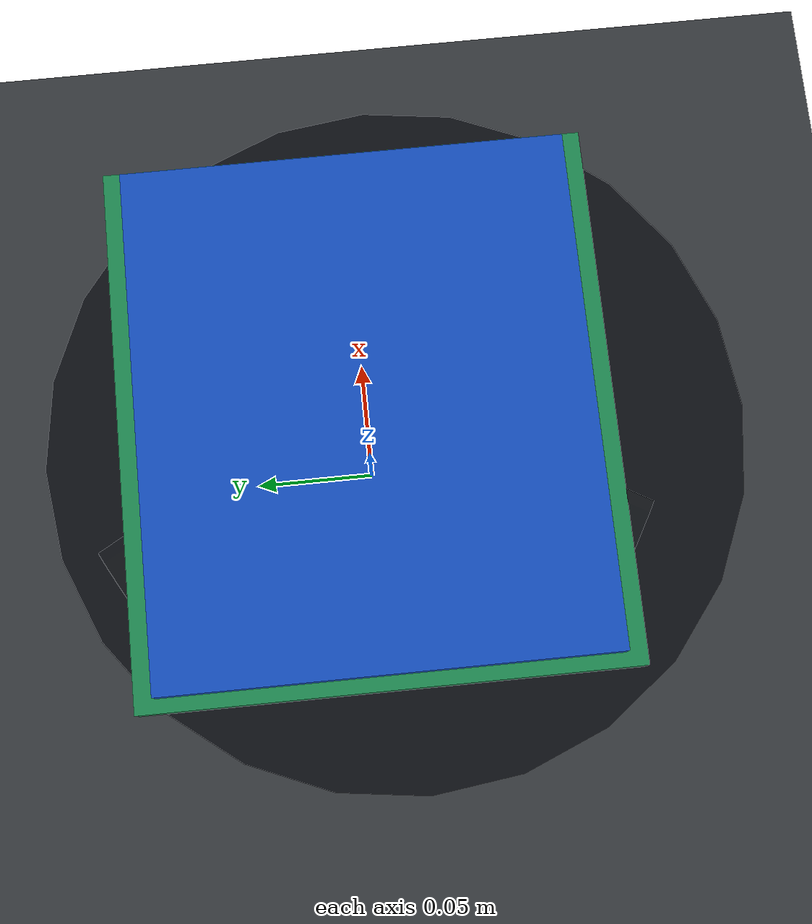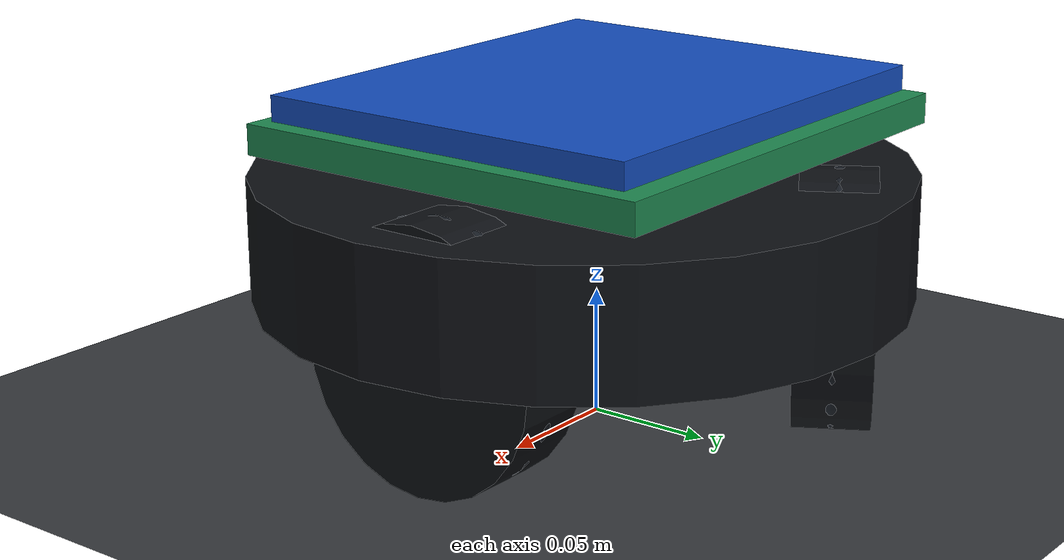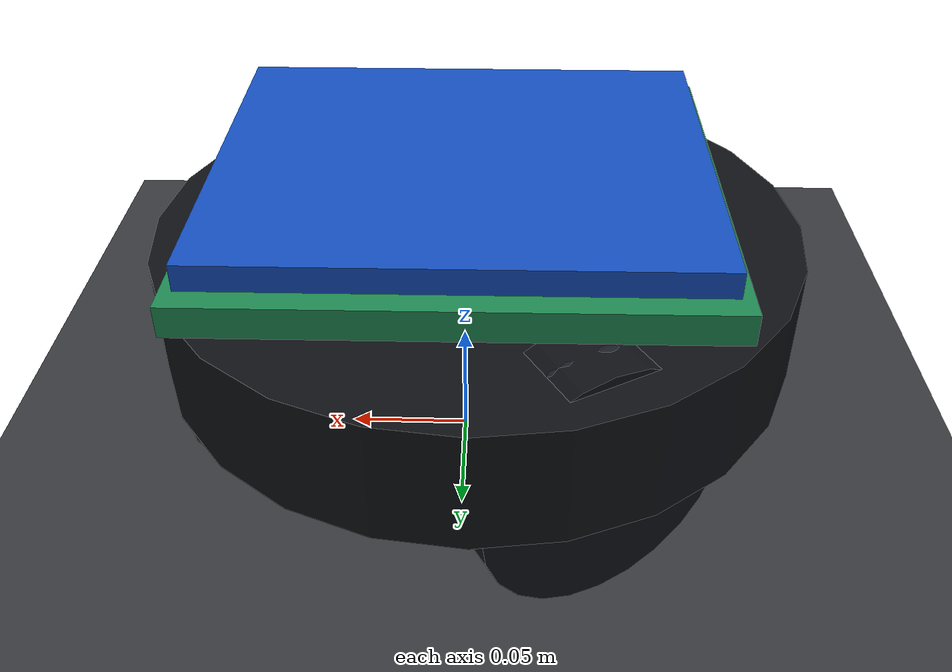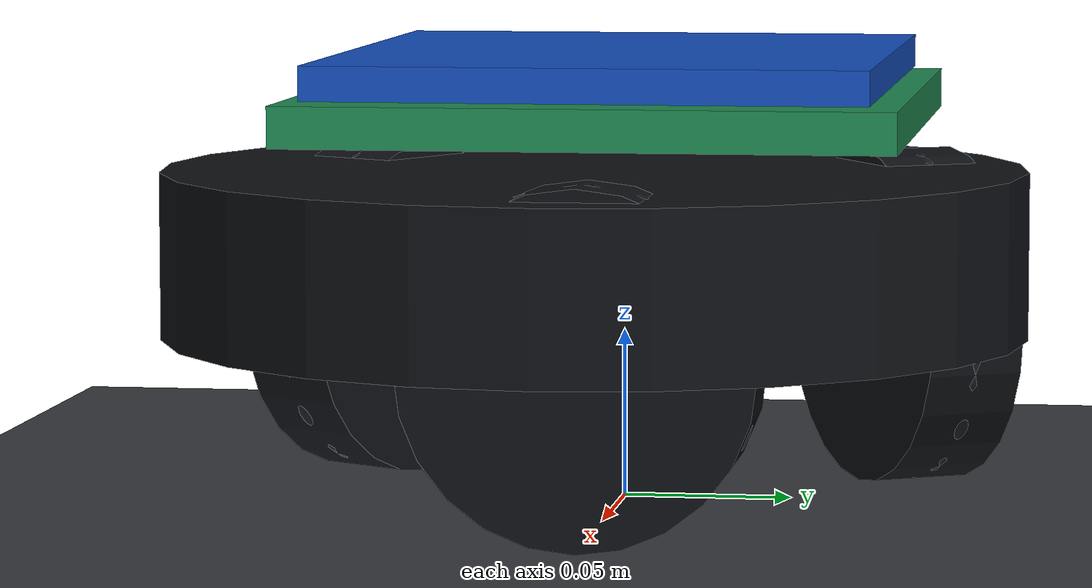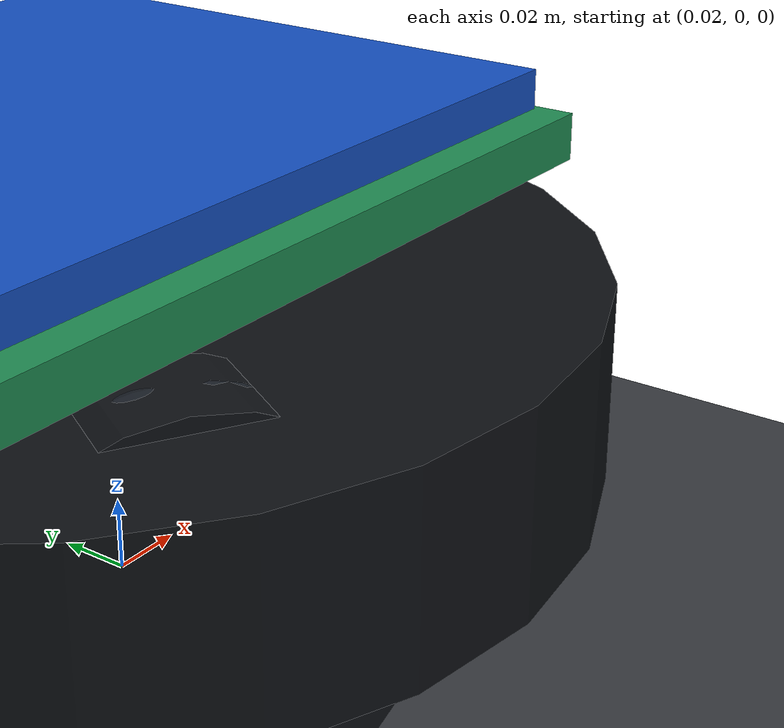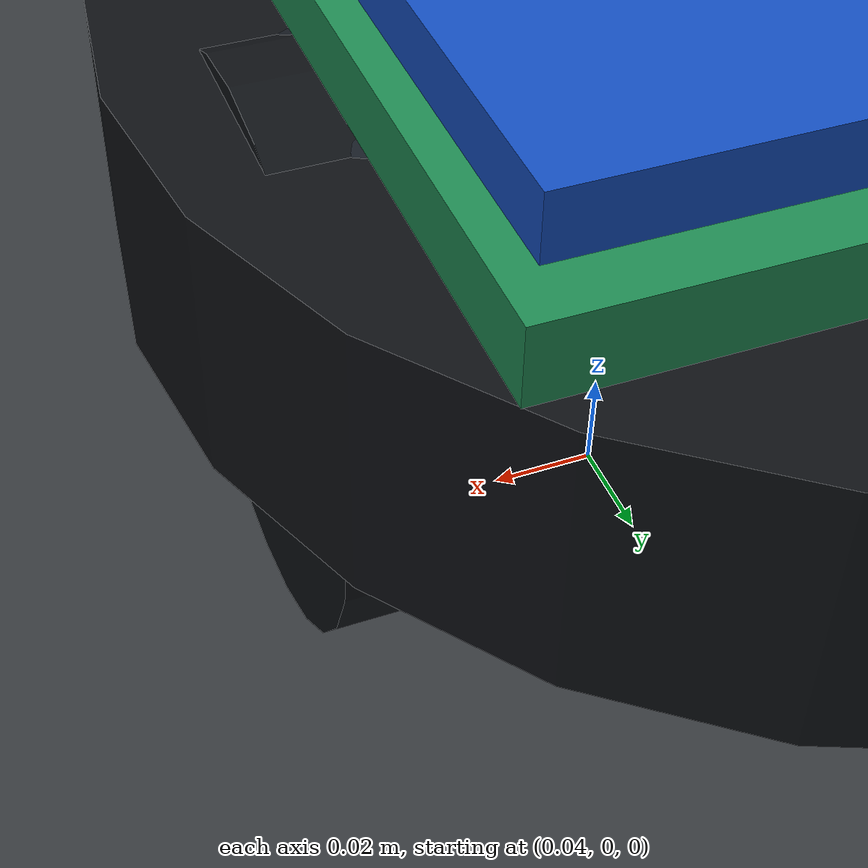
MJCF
<mujoco model="kural workshop">
  <compiler angle="radian" autolimits="true" />
  <option timestep="0.002" gravity="0 0 -9.81" integrator="implicitfast" cone="elliptic" iterations="50" />
  <size nconmax="300" njmax="1200" />
  <visual>
    <global azimuth="135" elevation="-22" />
    <headlight ambient="0.35 0.35 0.4" diffuse="0.7 0.7 0.7" specular="0.15 0.15 0.15" />
  </visual>
  <default>
    <joint damping="0.12" armature="0.003" />
    <geom friction="0.9 0.01 0.002" solref="0.008 1" solimp="0.9 0.95 0.001" />
    <default class="visual">
      <geom contype="0" conaffinity="0" group="1" />
    </default>
    <default class="collision">
      <geom rgba="0.15 0.65 0.9 0.16" group="3" margin="0.001" />
    </default>
    <default class="roller">
      <joint type="hinge" damping="0.0005" armature="0.00002" />
      <geom type="ellipsoid" size="0.005800 0.012000 0.005800" density="650" friction="1.15 0.001 0.0001" contype="2" conaffinity="1" rgba="0.09 0.11 0.14 1" group="2" condim="6" />
    </default>
    <default class="arm">
      <joint type="hinge" damping="0.3" armature="0.01" limited="true" />
    </default>
  </default>
  <asset>
    <texture name="floor_tex" type="2d" builtin="checker" rgb1="0.18 0.19 0.2" rgb2="0.25 0.26 0.28" width="512" height="512" />
    <material name="floor_mat" texture="floor_tex" texrepeat="20 20" reflectance="0.08" />
    <material name="dark" rgba="0.055 0.065 0.08 1" />
    <material name="aluminum" rgba="0.58 0.62 0.67 1" specular="0.3" shininess="0.45" />
    <material name="blue" rgba="0.08 0.31 0.75 1" />
    <material name="green" rgba="0.12 0.54 0.32 1" />
    <material name="arm_mat" rgba="0.92 0.92 0.88 1" />
    <material name="table_mat" rgba="0.42 0.27 0.15 1" />
  </asset>
  <worldbody>
    <light name="key" pos="1.5 -1.2 2.6" dir="-0.4 0.3 -1" diffuse="0.9 0.88 0.82" castshadow="true" />
    <light name="fill" pos="-1.5 1 1.8" dir="0.6 -0.4 -1" diffuse="0.35 0.42 0.52" />
    <geom name="floor" type="plane" size="3 3 0.05" material="floor_mat" condim="4" />
    <site name="world_origin" type="sphere" size="0.012" rgba="1 0.35 0.1 1" group="4" />
    <body name="chassis" pos="0 0 0.0508" quat="1 0 0 0">
      <freejoint name="base_free" />
      <inertial pos="0 0 0.13" mass="11" diaginertia="0.18 0.18 0.12" />
      <geom name="base_collision" class="collision" type="cylinder" pos="-0.005 -0.01 0.015" size="0.135 0.035" mass="2.5" contype="2" conaffinity="1" />
      <geom name="base_frame_visual" class="visual" type="cylinder" pos="-0.005 -0.01 0.022" size="0.13 0.025" material="dark" />
      <geom name="green_plate_visual" class="visual" type="box" pos="0 0 0.066" size="0.098 0.088 0.006" material="green" />
      <geom name="blue_plate_visual" class="visual" type="box" pos="0 0 0.078" size="0.093 0.08 0.005" material="blue" />
      <site name="base_heading" type="box" pos="0.09 0 0.11" size="0.09 0.009 0.009" rgba="1 0.34 0.08 1" group="4" />
      <body name="wheel_1_body" pos="-0.046383598 -0.080264486 0" quat="0.707106781 0.612230776 -0.353798640 0.000000000">
        <joint name="wheel_1" type="hinge" axis="0 0 1" damping="0.025" armature="0.004" />
        <geom class="visual" type="cylinder" size="0.0508 0.015" material="dark" />
        <body name="wheel_1_roller_00" pos="0.045000000 0.000000000 0" euler="0 0 0.000000000">
          <joint class="roller" axis="0 1 0" />
          <geom class="roller" />
        </body>
        <body name="wheel_1_roller_01" pos="0.041574579 0.017220754 0" euler="0 0 0.392699082">
          <joint class="roller" axis="0 1 0" />
          <geom class="roller" />
        </body>
        <body name="wheel_1_roller_02" pos="0.031819805 0.031819805 0" euler="0 0 0.785398163">
          <joint class="roller" axis="0 1 0" />
          <geom class="roller" />
        </body>
        <body name="wheel_1_roller_03" pos="0.017220754 0.041574579 0" euler="0 0 1.178097245">
          <joint class="roller" axis="0 1 0" />
          <geom class="roller" />
        </body>
        <body name="wheel_1_roller_04" pos="0.000000000 0.045000000 0" euler="0 0 1.570796327">
          <joint class="roller" axis="0 1 0" />
          <geom class="roller" />
        </body>
        <body name="wheel_1_roller_05" pos="-0.017220754 0.041574579 0" euler="0 0 1.963495408">
          <joint class="roller" axis="0 1 0" />
          <geom class="roller" />
        </body>
        <body name="wheel_1_roller_06" pos="-0.031819805 0.031819805 0" euler="0 0 2.356194490">
          <joint class="roller" axis="0 1 0" />
          <geom class="roller" />
        </body>
        <body name="wheel_1_roller_07" pos="-0.041574579 0.017220754 0" euler="0 0 2.748893572">
          <joint class="roller" axis="0 1 0" />
          <geom class="roller" />
        </body>
        <body name="wheel_1_roller_08" pos="-0.045000000 0.000000000 0" euler="0 0 3.141592654">
          <joint class="roller" axis="0 1 0" />
          <geom class="roller" />
        </body>
        <body name="wheel_1_roller_09" pos="-0.041574579 -0.017220754 0" euler="0 0 3.534291735">
          <joint class="roller" axis="0 1 0" />
          <geom class="roller" />
        </body>
        <body name="wheel_1_roller_10" pos="-0.031819805 -0.031819805 0" euler="0 0 3.926990817">
          <joint class="roller" axis="0 1 0" />
          <geom class="roller" />
        </body>
        <body name="wheel_1_roller_11" pos="-0.017220754 -0.041574579 0" euler="0 0 4.319689899">
          <joint class="roller" axis="0 1 0" />
          <geom class="roller" />
        </body>
        <body name="wheel_1_roller_12" pos="-0.000000000 -0.045000000 0" euler="0 0 4.712388980">
          <joint class="roller" axis="0 1 0" />
          <geom class="roller" />
        </body>
        <body name="wheel_1_roller_13" pos="0.017220754 -0.041574579 0" euler="0 0 5.105088062">
          <joint class="roller" axis="0 1 0" />
          <geom class="roller" />
        </body>
        <body name="wheel_1_roller_14" pos="0.031819805 -0.031819805 0" euler="0 0 5.497787144">
          <joint class="roller" axis="0 1 0" />
          <geom class="roller" />
        </body>
        <body name="wheel_1_roller_15" pos="0.041574579 -0.017220754 0" euler="0 0 5.890486225">
          <joint class="roller" axis="0 1 0" />
          <geom class="roller" />
        </body>
      </body>
      <body name="wheel_2_body" pos="0.092307852 0.000000000 0" quat="0.707106781 -0.000000000 0.707106781 0.000000000">
        <joint name="wheel_2" type="hinge" axis="0 0 1" damping="0.025" armature="0.004" />
        <geom class="visual" type="cylinder" size="0.0508 0.015" material="dark" />
        <body name="wheel_2_roller_00" pos="0.045000000 0.000000000 0" euler="0 0 0.000000000">
          <joint class="roller" axis="0 1 0" />
          <geom class="roller" />
        </body>
        <body name="wheel_2_roller_01" pos="0.041574579 0.017220754 0" euler="0 0 0.392699082">
          <joint class="roller" axis="0 1 0" />
          <geom class="roller" />
        </body>
        <body name="wheel_2_roller_02" pos="0.031819805 0.031819805 0" euler="0 0 0.785398163">
          <joint class="roller" axis="0 1 0" />
          <geom class="roller" />
        </body>
        <body name="wheel_2_roller_03" pos="0.017220754 0.041574579 0" euler="0 0 1.178097245">
          <joint class="roller" axis="0 1 0" />
          <geom class="roller" />
        </body>
        <body name="wheel_2_roller_04" pos="0.000000000 0.045000000 0" euler="0 0 1.570796327">
          <joint class="roller" axis="0 1 0" />
          <geom class="roller" />
        </body>
        <body name="wheel_2_roller_05" pos="-0.017220754 0.041574579 0" euler="0 0 1.963495408">
          <joint class="roller" axis="0 1 0" />
          <geom class="roller" />
        </body>
        <body name="wheel_2_roller_06" pos="-0.031819805 0.031819805 0" euler="0 0 2.356194490">
          <joint class="roller" axis="0 1 0" />
          <geom class="roller" />
        </body>
        <body name="wheel_2_roller_07" pos="-0.041574579 0.017220754 0" euler="0 0 2.748893572">
          <joint class="roller" axis="0 1 0" />
          <geom class="roller" />
        </body>
        <body name="wheel_2_roller_08" pos="-0.045000000 0.000000000 0" euler="0 0 3.141592654">
          <joint class="roller" axis="0 1 0" />
          <geom class="roller" />
        </body>
        <body name="wheel_2_roller_09" pos="-0.041574579 -0.017220754 0" euler="0 0 3.534291735">
          <joint class="roller" axis="0 1 0" />
          <geom class="roller" />
        </body>
        <body name="wheel_2_roller_10" pos="-0.031819805 -0.031819805 0" euler="0 0 3.926990817">
          <joint class="roller" axis="0 1 0" />
          <geom class="roller" />
        </body>
        <body name="wheel_2_roller_11" pos="-0.017220754 -0.041574579 0" euler="0 0 4.319689899">
          <joint class="roller" axis="0 1 0" />
          <geom class="roller" />
        </body>
        <body name="wheel_2_roller_12" pos="-0.000000000 -0.045000000 0" euler="0 0 4.712388980">
          <joint class="roller" axis="0 1 0" />
          <geom class="roller" />
        </body>
        <body name="wheel_2_roller_13" pos="0.017220754 -0.041574579 0" euler="0 0 5.105088062">
          <joint class="roller" axis="0 1 0" />
          <geom class="roller" />
        </body>
        <body name="wheel_2_roller_14" pos="0.031819805 -0.031819805 0" euler="0 0 5.497787144">
          <joint class="roller" axis="0 1 0" />
          <geom class="roller" />
        </body>
        <body name="wheel_2_roller_15" pos="0.041574579 -0.017220754 0" euler="0 0 5.890486225">
          <joint class="roller" axis="0 1 0" />
          <geom class="roller" />
        </body>
      </body>
      <body name="wheel_3_body" pos="-0.045924254 0.080264486 0" quat="0.707106781 -0.613746729 -0.351162288 0.000000000">
        <joint name="wheel_3" type="hinge" axis="0 0 1" damping="0.025" armature="0.004" />
        <geom class="visual" type="cylinder" size="0.0508 0.015" material="dark" />
        <body name="wheel_3_roller_00" pos="0.045000000 0.000000000 0" euler="0 0 0.000000000">
          <joint class="roller" axis="0 1 0" />
          <geom class="roller" />
        </body>
        <body name="wheel_3_roller_01" pos="0.041574579 0.017220754 0" euler="0 0 0.392699082">
          <joint class="roller" axis="0 1 0" />
          <geom class="roller" />
        </body>
        <body name="wheel_3_roller_02" pos="0.031819805 0.031819805 0" euler="0 0 0.785398163">
          <joint class="roller" axis="0 1 0" />
          <geom class="roller" />
        </body>
        <body name="wheel_3_roller_03" pos="0.017220754 0.041574579 0" euler="0 0 1.178097245">
          <joint class="roller" axis="0 1 0" />
          <geom class="roller" />
        </body>
        <body name="wheel_3_roller_04" pos="0.000000000 0.045000000 0" euler="0 0 1.570796327">
          <joint class="roller" axis="0 1 0" />
          <geom class="roller" />
        </body>
        <body name="wheel_3_roller_05" pos="-0.017220754 0.041574579 0" euler="0 0 1.963495408">
          <joint class="roller" axis="0 1 0" />
          <geom class="roller" />
        </body>
        <body name="wheel_3_roller_06" pos="-0.031819805 0.031819805 0" euler="0 0 2.356194490">
          <joint class="roller" axis="0 1 0" />
          <geom class="roller" />
        </body>
        <body name="wheel_3_roller_07" pos="-0.041574579 0.017220754 0" euler="0 0 2.748893572">
          <joint class="roller" axis="0 1 0" />
          <geom class="roller" />
        </body>
        <body name="wheel_3_roller_08" pos="-0.045000000 0.000000000 0" euler="0 0 3.141592654">
          <joint class="roller" axis="0 1 0" />
          <geom class="roller" />
        </body>
        <body name="wheel_3_roller_09" pos="-0.041574579 -0.017220754 0" euler="0 0 3.534291735">
          <joint class="roller" axis="0 1 0" />
          <geom class="roller" />
        </body>
        <body name="wheel_3_roller_10" pos="-0.031819805 -0.031819805 0" euler="0 0 3.926990817">
          <joint class="roller" axis="0 1 0" />
          <geom class="roller" />
        </body>
        <body name="wheel_3_roller_11" pos="-0.017220754 -0.041574579 0" euler="0 0 4.319689899">
          <joint class="roller" axis="0 1 0" />
          <geom class="roller" />
        </body>
        <body name="wheel_3_roller_12" pos="-0.000000000 -0.045000000 0" euler="0 0 4.712388980">
          <joint class="roller" axis="0 1 0" />
          <geom class="roller" />
        </body>
        <body name="wheel_3_roller_13" pos="0.017220754 -0.041574579 0" euler="0 0 5.105088062">
          <joint class="roller" axis="0 1 0" />
          <geom class="roller" />
        </body>
        <body name="wheel_3_roller_14" pos="0.031819805 -0.031819805 0" euler="0 0 5.497787144">
          <joint class="roller" axis="0 1 0" />
          <geom class="roller" />
        </body>
        <body name="wheel_3_roller_15" pos="0.041574579 -0.017220754 0" euler="0 0 5.890486225">
          <joint class="roller" axis="0 1 0" />
          <geom class="roller" />
        </body>
      </body>
      <camera name="follow" pos="-1.4 -1.4 0.85" xyaxes="0.707 -0.707 0 0.3 0.3 0.906" mode="trackcom" />
      <camera name="arm_close" pos="-0.65 -0.75 0.75" xyaxes="0.75 -0.66 0 0.35 0.4 0.845" mode="track" />
      </body>
    <camera name="top" pos="0 0 3" quat="0.707107 0.707107 0 0" />
    <camera name="workshop" pos="-1.7 -1.9 1.35" xyaxes="0.74 -0.67 0 0.3 0.33 0.895" />
  </worldbody>
  <contact>
    <exclude body1="chassis" body2="wheel_1_body" />
    <exclude body1="chassis" body2="wheel_2_body" />
    <exclude body1="chassis" body2="wheel_3_body" />
    </contact>
  <actuator>
    <velocity name="wheel_1_motor" joint="wheel_1" kv="2.5" ctrlrange="-24 24" forcerange="-5 5" />
    <velocity name="wheel_2_motor" joint="wheel_2" kv="2.5" ctrlrange="-24 24" forcerange="-5 5" />
    <velocity name="wheel_3_motor" joint="wheel_3" kv="2.5" ctrlrange="-24 24" forcerange="-5 5" />
    </actuator>
  </mujoco>
